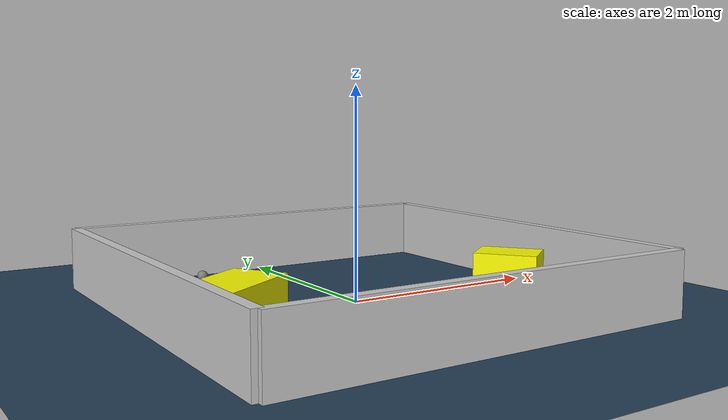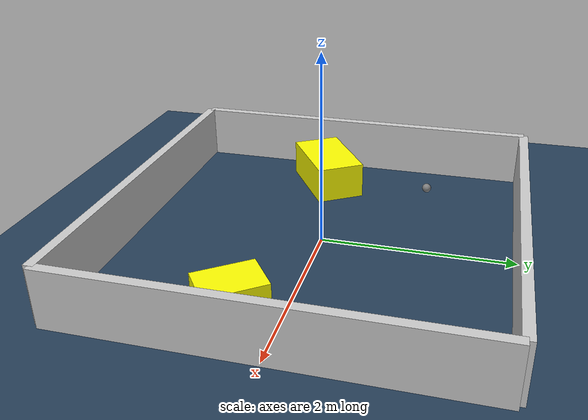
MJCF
<?xml version="1.0" ?>
<mujoco model="generated_environment">
  <option timestep="0.01" integrator="RK4" cone="elliptic"/>
  <default>
    <geom density="1"/>
  </default>
  <asset>
    <texture builtin="gradient" height="3072" rgb1="0.3 0.5 0.7" rgb2="0 0 0" type="skybox" width="512"/>
    <texture builtin="checker" height="300" mark="edge" markrgb="0.8 0.8 0.8" name="groundplane" rgb1="0.2 0.3 0.4" rgb2="0.1 0.2 0.3" type="2d" width="300"/>
    <material name="groundplane" reflectance="0.2" texrepeat="5 5" texture="groundplane" texuniform="true"/>
    <material name="robot" rgba="0.0 1.0 0.0 1"/>
  </asset>
  <worldbody>
    <light dir="0 0 -1" directional="true" pos="0 0 1.5"/>
    <geom condim="4" friction="1.0 0.005 0.001" material="groundplane" name="floor" size="0 0 0.05" type="plane"/>
    <body name="walls">
      <geom name="wall_1" condim="4" pos="-2.0 0.0 0.3" rgba="0.800000011920929 0.800000011920929 0.800000011920929 1.0" size="0.05 2.0 0.3" type="box"/>
      <geom name="wall_2" condim="4" pos="2.0 0.0 0.3" rgba="0.800000011920929 0.800000011920929 0.800000011920929 1.0" size="0.05 2.0 0.3" type="box"/>
      <geom name="wall_3" condim="4" pos="0.0 -2.0 0.3" rgba="0.800000011920929 0.800000011920929 0.800000011920929 1.0" size="2.0 0.05 0.3" type="box"/>
      <geom name="wall_4" condim="4" pos="0.0 2.0 0.3" rgba="0.800000011920929 0.800000011920929 0.800000011920929 1.0" size="2.0 0.05 0.3" type="box"/>
    </body>
    <body name="robot">
      <joint name="joint_x" type="slide" pos="0 0 0" axis="1 0 0"/>
      <joint name="joint_y" type="slide" pos="0 0 0" axis="0 1 0"/>
      <geom name="robot" type="sphere" pos="-1.1121419236003192 0.9643162493549511 0.2" size="0.05" mass="5." friction="1.0 0.005 0.0001" condim="4"/>
      <site name="sensor_ball"/>
    </body>
    <body name="obstacle_1_movable">
      <geom name="obstacle_1_movable" condim="4" pos="1.486386522886368 -0.438304946659857 0.2" euler="0 0 36.87060435313951" friction="1.0 0.005 0.001" rgba="1 1 0 1" size="0.2182180832920278 0.3032778955700187 0.2" type="box" mass="0.1"/>
      <joint type="free"/>
    </body>
    <body name="obstacle_2_movable">
      <geom name="obstacle_2_movable" condim="4" pos="-1.3717506197997555 -0.2638519710884186 0.2" euler="0 0 122.85652608120802" friction="1.0 0.005 0.001" rgba="1 1 0 1" size="0.26941476811806664 0.45779794833136905 0.2" type="box" mass="0.1"/>
      <joint type="free"/>
    </body>
  </worldbody>
  <actuator>
    <motor name="actuator_x" joint="joint_x" gear="1" ctrlrange="-1 1"/>
    <motor name="actuator_y" joint="joint_y" gear="1" ctrlrange="-1 1"/>
  </actuator>
</mujoco>
